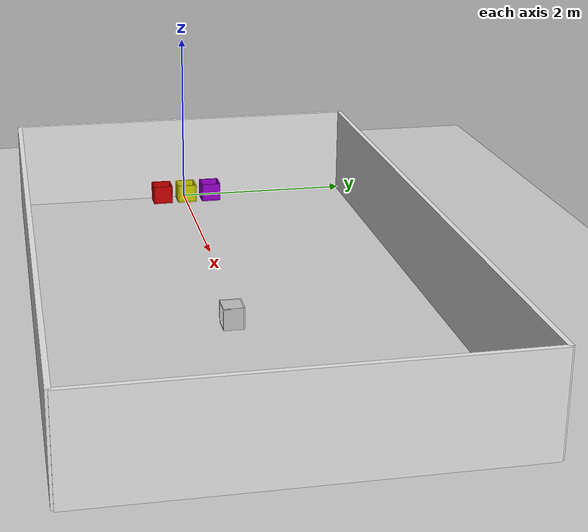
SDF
<?xml version="1.0"?>
<sdf version="1.8">
  <world name="leo_empty">
    <physics name="1ms" type="ignored">
      <max_step_size>0.001</max_step_size>
      <real_time_factor>1.0</real_time_factor>
    </physics>

    <plugin
      filename="gz-sim-physics-system"
      name="gz::sim::systems::Physics">
    </plugin>
    <plugin
      filename="gz-sim-sensors-system"
      name="gz::sim::systems::Sensors">
    </plugin>
    <plugin
      filename="gz-sim-scene-broadcaster-system"
      name="gz::sim::systems::SceneBroadcaster">
    </plugin>
    <plugin
      filename="gz-sim-user-commands-system"
      name="gz::sim::systems::UserCommands">
    </plugin>
    <plugin filename="gz-sim-imu-system"
      name="gz::sim::systems::Imu">
    </plugin>

    <light name="sun" type="directional">
      <cast_shadows>true</cast_shadows>
      <pose>0 0 10 0 0 0</pose>
      <diffuse>0.8 0.8 0.8 1</diffuse>
      <specular>0.2 0.2 0.2 1</specular>
      <attenuation>
        <range>1000</range>
        <constant>0.9</constant>
        <linear>0.01</linear>
        <quadratic>0.001</quadratic>
      </attenuation>
      <direction>-0.5 0.1 -0.9</direction>
    </light>

    <model name="ground_plane">
      <static>true</static>
      <link name="link">
        <collision name="collision">
          <geometry>
            <plane>
              <normal>0 0 1</normal>
              <size>100 100</size>
            </plane>
          </geometry>
          <surface>
            <friction>
              <ode>
                <mu>50</mu>
              </ode>
              <bullet>
                <friction>1</friction>
                <friction2>1</friction2>
                <rolling_friction>0.1</rolling_friction>
              </bullet>
            </friction>
          </surface>
        </collision>
        <visual name="visual">
          <geometry>
            <plane>
              <normal>0 0 1</normal>
              <size>100 100</size>
            </plane>
          </geometry>
          <material>
            <ambient>0.8 0.8 0.8 1</ambient>
            <diffuse>0.8 0.8 0.8 1</diffuse>
            <specular>0.8 0.8 0.8 1</specular>
          </material>
        </visual>
      </link>
    </model>

    <!-- 障碍物1: 立方体盒子 -->

      <!-- 7米长墙体 -->
    <model name="wall_4m_1">
      <include>
        <uri>model://wall_4m</uri>
        <pose>3.5 2 0.5 0 0 0</pose>  <!-- X=5m, Y=0, Z=0.5m (高度的一半) -->
      </include>
    </model>

    <!-- 7米长墙体 -->
    <model name="wall_4m_2">
      <include>
        <uri>model://wall_4m</uri>
        <pose>3.5 -2 0.5 0 0 0</pose>  <!-- X=5m, Y=0, Z=0.5m (高度的一半) -->
      </include>
    </model>

       <!-- 4米长墙体 -->
    <model name="wall_3m_1">
      <include>
        <uri>model://wall_3m</uri>
        <pose>0 0 0.5 0 0 1.57079632 </pose>
      </include>
    </model>

        <!-- 4米长墙体 -->
    <model name="wall_3m_2">
      <include>
        <uri>model://wall_3m</uri>
        <pose>7 0 0.5 0 0 1.57079632</pose>
      </include>
    </model>

   <model name="basket_1">
      <include>
        <uri>model://basket</uri>
        <pose>4 0 0.115 1.57079632 0 0</pose>  <!-- Z=0.115是高度的一半，底部贴地 -->
      </include>
    </model>

    <!-- 紫色篓子 -->
    <model name="basket_purple_1">
      <include>
        <uri>model://basket_purple</uri>
        <pose>0.2 0.3 0.015 0 0 0</pose>
      </include>
    </model>

    <!-- 黄色篓子 -->
    <model name="basket_yellow_1">
      <include>
        <uri>model://basket_yellow</uri>
        <pose>0.2 0 0.015 0 0 0</pose>
      </include>
    </model>

    <!-- 红色篓子 -->
    <model name="basket_red_1">
      <include>
        <uri>model://basket_red</uri>
        <pose>0.2 -0.3 0.015 0 0 0</pose>
      </include>
    </model>

  </world>
</sdf>

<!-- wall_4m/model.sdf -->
<sdf version="1.6">
  <model name="wall_4m">
    <static>true</static>
    <link name="link">
      <collision name="collision">
        <geometry>
          <box>
            <size>7 0.05 1</size>
          </box>
        </geometry>
      </collision>
      <visual name="visual">
        <geometry>
          <box>
            <size>7 0.05 1</size>
          </box>
        </geometry>
        <material>
          <ambient>0.9 0.9 0.9 1</ambient>
          <diffuse>0.9 0.9 0.9 1</diffuse>
          <specular>0.3 0.3 0.3 1</specular>
        </material>
      </visual>
    </link>
  </model>
</sdf>

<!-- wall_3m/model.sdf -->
<sdf version="1.6">
  <model name="wall_3m">
    <static>true</static>
    <link name="link">
      <collision name="collision">
        <geometry>
          <box>
            <size>4 0.05 1</size>
          </box>
        </geometry>
      </collision>
      <visual name="visual">
        <geometry>
          <box>
            <size>4 0.05 1</size>
          </box>
        </geometry>
        <material>
          <ambient>0.9 0.9 0.9 1</ambient>
          <diffuse>0.9 0.9 0.9 1</diffuse>
          <specular>0.3 0.3 0.3 1</specular>
        </material>
      </visual>
    </link>
  </model>
</sdf>

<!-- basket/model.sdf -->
<sdf version="1.6">
  <model name="basket">
    <static>true</static>

    <!-- 底部 (23cm × 23cm × 1.5cm) -->
    <link name="bottom">
      <collision name="collision">
        <geometry>
          <box>
            <size>0.23 0.23 0.015</size>
          </box>
        </geometry>
      </collision>
      <visual name="visual">
        <geometry>
          <box>
            <size>0.23 0.23 0.015</size>
          </box>
        </geometry>
        <material>
          <ambient>0.75 0.75 0.75 1</ambient>
          <diffuse>0.75 0.75 0.75 1</diffuse>
          <specular>0.5 0.5 0.5 1</specular>
        </material>
      </visual>
      <pose>0 0 0.0075 0 0 0</pose>
    </link>

    <!-- 前侧 (23cm × 1.5cm × 20cm) -->
    <link name="front">
      <collision name="collision">
        <geometry>
          <box>
            <size>0.23 0.015 0.20</size>
          </box>
        </geometry>
      </collision>
      <visual name="visual">
        <geometry>
          <box>
            <size>0.23 0.015 0.20</size>
          </box>
        </geometry>
        <material>
          <ambient>0.75 0.75 0.75 1</ambient>
          <diffuse>0.75 0.75 0.75 1</diffuse>
          <specular>0.5 0.5 0.5 1</specular>
        </material>
      </visual>
      <pose>0 0.1075 0.115 0 0 0</pose>
    </link>

    <!-- 后侧 (23cm × 1.5cm × 20cm) -->
    <link name="back">
      <collision name="collision">
        <geometry>
          <box>
            <size>0.23 0.015 0.20</size>
          </box>
        </geometry>
      </collision>
      <visual name="visual">
        <geometry>
          <box>
            <size>0.23 0.015 0.20</size>
          </box>
        </geometry>
        <material>
          <ambient>0.75 0.75 0.75 1</ambient>
          <diffuse>0.75 0.75 0.75 1</diffuse>
          <specular>0.5 0.5 0.5 1</specular>
        </material>
      </visual>
      <pose>0 -0.1075 0.115 0 0 0</pose>
    </link>

    <!-- 左侧 (1.5cm × 23cm × 20cm) -->
    <link name="left">
      <collision name="collision">
        <geometry>
          <box>
            <size>0.015 0.23 0.20</size>
          </box>
        </geometry>
      </collision>
      <visual name="visual">
        <geometry>
          <box>
            <size>0.015 0.23 0.20</size>
          </box>
        </geometry>
        <material>
          <ambient>0.75 0.75 0.75 1</ambient>
          <diffuse>0.75 0.75 0.75 1</diffuse>
          <specular>0.5 0.5 0.5 1</specular>
        </material>
      </visual>
      <pose>-0.1075 0 0.115 0 0 0</pose>
    </link>

    <!-- 右侧 (1.5cm × 23cm × 20cm) -->
    <link name="right">
      <collision name="collision">
        <geometry>
          <box>
            <size>0.015 0.23 0.20</size>
          </box>
        </geometry>
      </collision>
      <visual name="visual">
        <geometry>
          <box>
            <size>0.015 0.23 0.20</size>
          </box>
        </geometry>
        <material>
          <ambient>0.75 0.75 0.75 1</ambient>
          <diffuse>0.75 0.75 0.75 1</diffuse>
          <specular>0.5 0.5 0.5 1</specular>
        </material>
      </visual>
      <pose>0.1075 0 0.115 0 0 0</pose>
    </link>

  </model>
</sdf>

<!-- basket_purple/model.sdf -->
<sdf version="1.6">
  <model name="basket_purple">
    <static>true</static>

    <!-- 底部 (23cm × 23cm × 1.5cm) -->
    <link name="bottom">
      <collision name="collision">
        <geometry>
          <box>
            <size>0.23 0.23 0.015</size>
          </box>
        </geometry>
      </collision>
      <visual name="visual">
        <geometry>
          <box>
            <size>0.23 0.23 0.015</size>
          </box>
        </geometry>
        <material>
          <ambient>0.6 0.0 0.8 1</ambient>
          <diffuse>0.6 0.0 0.8 1</diffuse>
          <specular>0.3 0.0 0.4 1</specular>
        </material>
      </visual>
      <pose>0 0 0.0075 0 0 0</pose>
    </link>

    <!-- 前侧 (23cm × 1.5cm × 20cm) -->
    <link name="front">
      <collision name="collision">
        <geometry>
          <box>
            <size>0.23 0.015 0.20</size>
          </box>
        </geometry>
      </collision>
      <visual name="visual">
        <geometry>
          <box>
            <size>0.23 0.015 0.20</size>
          </box>
        </geometry>
        <material>
          <ambient>0.6 0.0 0.8 1</ambient>
          <diffuse>0.6 0.0 0.8 1</diffuse>
          <specular>0.3 0.0 0.4 1</specular>
        </material>
      </visual>
      <pose>0 0.1075 0.115 0 0 0</pose>
    </link>

    <!-- 后侧 (23cm × 1.5cm × 20cm) -->
    <link name="back">
      <collision name="collision">
        <geometry>
          <box>
            <size>0.23 0.015 0.20</size>
          </box>
        </geometry>
      </collision>
      <visual name="visual">
        <geometry>
          <box>
            <size>0.23 0.015 0.20</size>
          </box>
        </geometry>
        <material>
          <ambient>0.6 0.0 0.8 1</ambient>
          <diffuse>0.6 0.0 0.8 1</diffuse>
          <specular>0.3 0.0 0.4 1</specular>
        </material>
      </visual>
      <pose>0 -0.1075 0.115 0 0 0</pose>
    </link>

    <!-- 左侧 (1.5cm × 23cm × 20cm) -->
    <link name="left">
      <collision name="collision">
        <geometry>
          <box>
            <size>0.015 0.23 0.20</size>
          </box>
        </geometry>
      </collision>
      <visual name="visual">
        <geometry>
          <box>
            <size>0.015 0.23 0.20</size>
          </box>
        </geometry>
        <material>
          <ambient>0.6 0.0 0.8 1</ambient>
          <diffuse>0.6 0.0 0.8 1</diffuse>
          <specular>0.3 0.0 0.4 1</specular>
        </material>
      </visual>
      <pose>-0.1075 0 0.115 0 0 0</pose>
    </link>

    <!-- 右侧 (1.5cm × 23cm × 20cm) -->
    <link name="right">
      <collision name="collision">
        <geometry>
          <box>
            <size>0.015 0.23 0.20</size>
          </box>
        </geometry>
      </collision>
      <visual name="visual">
        <geometry>
          <box>
            <size>0.015 0.23 0.20</size>
          </box>
        </geometry>
        <material>
          <ambient>0.6 0.0 0.8 1</ambient>
          <diffuse>0.6 0.0 0.8 1</diffuse>
          <specular>0.3 0.0 0.4 1</specular>
        </material>
      </visual>
      <pose>0.1075 0 0.115 0 0 0</pose>
    </link>

  </model>
</sdf>

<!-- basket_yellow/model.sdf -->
<sdf version="1.6">
  <model name="basket_yellow">
    <static>true</static>

    <!-- 底部 (23cm × 23cm × 1.5cm) -->
    <link name="bottom">
      <collision name="collision">
        <geometry>
          <box>
            <size>0.23 0.23 0.015</size>
          </box>
        </geometry>
      </collision>
      <visual name="visual">
        <geometry>
          <box>
            <size>0.23 0.23 0.015</size>
          </box>
        </geometry>
        <material>
          <ambient>0.8 0.8 0.0 1</ambient>
          <diffuse>0.8 0.8 0.0 1</diffuse>
          <specular>0.4 0.4 0.0 1</specular>
        </material>
      </visual>
      <pose>0 0 0.0075 0 0 0</pose>
    </link>

    <!-- 前侧 (23cm × 1.5cm × 20cm) -->
    <link name="front">
      <collision name="collision">
        <geometry>
          <box>
            <size>0.23 0.015 0.20</size>
          </box>
        </geometry>
      </collision>
      <visual name="visual">
        <geometry>
          <box>
            <size>0.23 0.015 0.20</size>
          </box>
        </geometry>
        <material>
          <ambient>0.8 0.8 0.0 1</ambient>
          <diffuse>0.8 0.8 0.0 1</diffuse>
          <specular>0.4 0.4 0.0 1</specular>
        </material>
      </visual>
      <pose>0 0.1075 0.115 0 0 0</pose>
    </link>

    <!-- 后侧 (23cm × 1.5cm × 20cm) -->
    <link name="back">
      <collision name="collision">
        <geometry>
          <box>
            <size>0.23 0.015 0.20</size>
          </box>
        </geometry>
      </collision>
      <visual name="visual">
        <geometry>
          <box>
            <size>0.23 0.015 0.20</size>
          </box>
        </geometry>
        <material>
          <ambient>0.8 0.8 0.0 1</ambient>
          <diffuse>0.8 0.8 0.0 1</diffuse>
          <specular>0.4 0.4 0.0 1</specular>
        </material>
      </visual>
      <pose>0 -0.1075 0.115 0 0 0</pose>
    </link>

    <!-- 左侧 (1.5cm × 23cm × 20cm) -->
    <link name="left">
      <collision name="collision">
        <geometry>
          <box>
            <size>0.015 0.23 0.20</size>
          </box>
        </geometry>
      </collision>
      <visual name="visual">
        <geometry>
          <box>
            <size>0.015 0.23 0.20</size>
          </box>
        </geometry>
        <material>
          <ambient>0.8 0.8 0.0 1</ambient>
          <diffuse>0.8 0.8 0.0 1</diffuse>
          <specular>0.4 0.4 0.0 1</specular>
        </material>
      </visual>
      <pose>-0.1075 0 0.115 0 0 0</pose>
    </link>

    <!-- 右侧 (1.5cm × 23cm × 20cm) -->
    <link name="right">
      <collision name="collision">
        <geometry>
          <box>
            <size>0.015 0.23 0.20</size>
          </box>
        </geometry>
      </collision>
      <visual name="visual">
        <geometry>
          <box>
            <size>0.015 0.23 0.20</size>
          </box>
        </geometry>
        <material>
          <ambient>0.8 0.8 0.0 1</ambient>
          <diffuse>0.8 0.8 0.0 1</diffuse>
          <specular>0.4 0.4 0.0 1</specular>
        </material>
      </visual>
      <pose>0.1075 0 0.115 0 0 0</pose>
    </link>

  </model>
</sdf>

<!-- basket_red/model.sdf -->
<sdf version="1.6">
  <model name="basket_red">
    <static>true</static>

    <!-- 底部 (23cm × 23cm × 1.5cm) -->
    <link name="bottom">
      <collision name="collision">
        <geometry>
          <box>
            <size>0.23 0.23 0.015</size>
          </box>
        </geometry>
      </collision>
      <visual name="visual">
        <geometry>
          <box>
            <size>0.23 0.23 0.015</size>
          </box>
        </geometry>
        <material>
          <ambient>0.8 0.0 0.0 1</ambient>
          <diffuse>0.8 0.0 0.0 1</diffuse>
          <specular>0.4 0.0 0.0 1</specular>
        </material>
      </visual>
      <pose>0 0 0.0075 0 0 0</pose>
    </link>

    <!-- 前侧 (23cm × 1.5cm × 20cm) -->
    <link name="front">
      <collision name="collision">
        <geometry>
          <box>
            <size>0.23 0.015 0.20</size>
          </box>
        </geometry>
      </collision>
      <visual name="visual">
        <geometry>
          <box>
            <size>0.23 0.015 0.20</size>
          </box>
        </geometry>
        <material>
          <ambient>0.8 0.0 0.0 1</ambient>
          <diffuse>0.8 0.0 0.0 1</diffuse>
          <specular>0.4 0.0 0.0 1</specular>
        </material>
      </visual>
      <pose>0 0.1075 0.115 0 0 0</pose>
    </link>

    <!-- 后侧 (23cm × 1.5cm × 20cm) -->
    <link name="back">
      <collision name="collision">
        <geometry>
          <box>
            <size>0.23 0.015 0.20</size>
          </box>
        </geometry>
      </collision>
      <visual name="visual">
        <geometry>
          <box>
            <size>0.23 0.015 0.20</size>
          </box>
        </geometry>
        <material>
          <ambient>0.8 0.0 0.0 1</ambient>
          <diffuse>0.8 0.0 0.0 1</diffuse>
          <specular>0.4 0.0 0.0 1</specular>
        </material>
      </visual>
      <pose>0 -0.1075 0.115 0 0 0</pose>
    </link>

    <!-- 左侧 (1.5cm × 23cm × 20cm) -->
    <link name="left">
      <collision name="collision">
        <geometry>
          <box>
            <size>0.015 0.23 0.20</size>
          </box>
        </geometry>
      </collision>
      <visual name="visual">
        <geometry>
          <box>
            <size>0.015 0.23 0.20</size>
          </box>
        </geometry>
        <material>
          <ambient>0.8 0.0 0.0 1</ambient>
          <diffuse>0.8 0.0 0.0 1</diffuse>
          <specular>0.4 0.0 0.0 1</specular>
        </material>
      </visual>
      <pose>-0.1075 0 0.115 0 0 0</pose>
    </link>

    <!-- 右侧 (1.5cm × 23cm × 20cm) -->
    <link name="right">
      <collision name="collision">
        <geometry>
          <box>
            <size>0.015 0.23 0.20</size>
          </box>
        </geometry>
      </collision>
      <visual name="visual">
        <geometry>
          <box>
            <size>0.015 0.23 0.20</size>
          </box>
        </geometry>
        <material>
          <ambient>0.8 0.0 0.0 1</ambient>
          <diffuse>0.8 0.0 0.0 1</diffuse>
          <specular>0.4 0.0 0.0 1</specular>
        </material>
      </visual>
      <pose>0.1075 0 0.115 0 0 0</pose>
    </link>

  </model>
</sdf>
